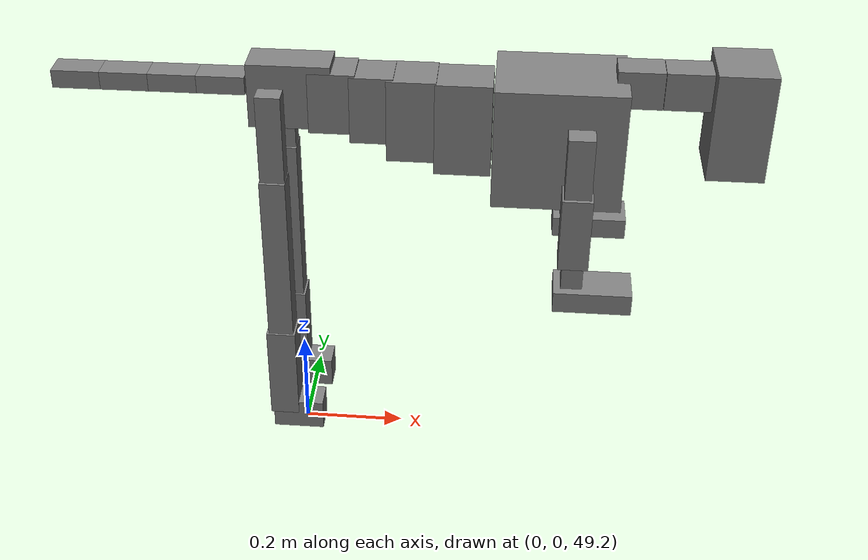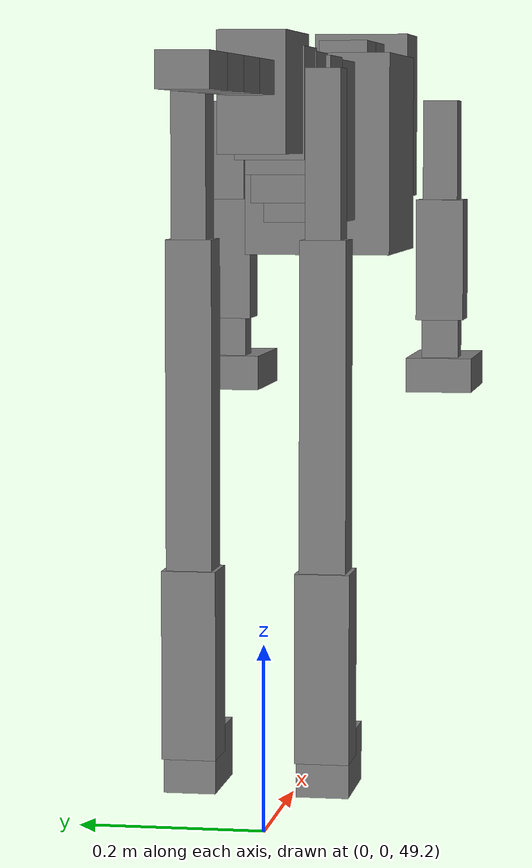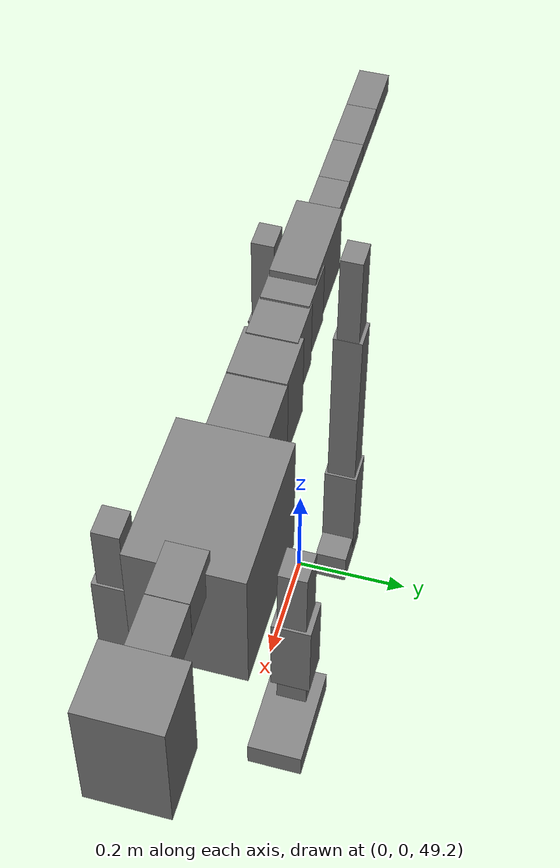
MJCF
<mujoco model="dog">

    <default>
        <joint armature="0.02" stiffness="1" damping="0.2" limited="true"/>
        <geom condim="3" friction="1 0.05 0.05" margin="0.01"/>
        <motor ctrllimited="true" ctrlrange="-1.0 1.0" forcelimited="true" gear="50"/>
    </default>

    <compiler inertiafromgeom="true" angle="radian"/>

    <option timestep="0.016" iterations="50" tolerance="1e-10" solver="Newton" jacobian="dense" cone="pyramidal"/>

    <size nconmax="20000" njmax="60000" nstack="5000000"/>
    <visual>
        <map force="0.1" zfar="30"/>
        <rgba haze="0.15 0.25 0.35 1"/>
        <quality shadowsize="2048"/>
        <global offwidth="800" offheight="800"/>
    </visual>

    <asset>
        <texture type="skybox" builtin="gradient" rgb1="0.3 0.5 0.7" rgb2="0 0 0" width="512" height="512"/>
        <texture name="texplane" type="2d" builtin="checker" rgb1=".2 .3 .4" rgb2=".1 0.15 0.2" width="512" height="512"
                 mark="cross" markrgb=".8 .8 .8"/>
        <texture name="texgeom" type="cube" builtin="flat" mark="cross" width="127" height="1278" rgb1="0.8 0.6 0.4"
                 rgb2="0.8 0.6 0.4" markrgb="1 1 1" random="0.01"/>

        <material name="matplane" reflectance="0.3" texture="texplane" texrepeat="1 1" texuniform="true"/>
        <material name="matgeom" texture="texgeom" texuniform="true" rgba="0.8 0.6 .4 1"/>
    </asset>

    <worldbody>
        <geom name="floor" pos="0 0 0" size="0 0 .25" type="plane" material="matplane" condim="3"/>

        <light directional="false" diffuse=".2 .2 .2" specular="0 0 0" pos="0 0 5" dir="0 0 -1" castshadow="false"/>
        <light mode="targetbodycom" target="torso" directional="false" diffuse=".8 .8 .8" specular="0.3 0.3 0.3"
               pos="0 0 4.0" dir="0 0 -1"/>

        <body name="root" pos="0 0 50">
            <freejoint name="root_1"/>
            <geom type="box" pos="0 0 -0.02" size="0.0774  0.0358  0.063" density="2030"/>

            <body name="spine1" pos="0.054 0 0">
                <joint name="spine1_y" axis="0 1 0" range="0 0.7" limited="true"/>
                <geom type="box" pos="0.02375 0 -0.03" size="0.04375  0.0375  0.05985" density="2030"/>

                <body name="spine2" pos="0.0612 0 0">
                    <joint name="spine2_y" axis="0 1 0" range="-0.15 0.15" limited="true"/>
                    <geom type="box" pos="0.03555  0  -0.04" size="0.04055  0.039  0.06615" density="2030"/>

                    <body name="spine3" pos="0.0730 0 0">
                        <joint name="spine3_y" axis="0 1 0" range="-0.15 0.15" limited="true"/>
                        <geom type="box" pos="0.03555  0  -0.057" size="0.04555  0.0445  0.081" density="2030"/>

                        <body name="spine4" pos="0.0780 0 0">
                            <joint name="spine4_y" axis="0 1 0" range="-0.15 0.15" limited="true"/>
                            <geom type="box" pos="0.05265  0  -0.07" size="0.05265  0.045  0.09135" density="2030"/>

                            <body name="torso" pos="0.1082 0 0">
                                <joint name="torso_y" axis="0 1 0" range="-0.15 0.15" limited="true"/>
                                <geom type="box" pos="0.11925  0  -0.085" size="0.11925  0.085  0.11745"
                                      density="2030"/>

                                <body name="neck1" pos="0.2160  0   0.0180">
                                    <joint name="neck1_y" axis="0 1 0" range="-1.2  -1" limited="true"/>
                                    <geom type="box" pos="0.0423  0  0" size="0.0423  0.03  0.036" density="2325"/>

                                    <body name="neck2" pos="0.0853  0  0">
                                        <joint name="neck2_y" axis="0 1 0" range="0.1  0" limited="true"/>
                                        <geom type="box" pos="0.0423  0  0" size="0.0423  0.03  0.036" density="2325"/>

                                        <body name="head" pos="0.0853  0  0">
                                            <joint name="head_y" axis="0 1 0" range="-0.3  -0.2" limited="true"/>
                                            <geom type="box" pos="0.0531  0  -0.055" size="0.0531  0.06  0.1044"
                                                  density="4030"/>

                                        </body>
                                    </body>
                                </body>

                                <body name="front_shoulder" pos="0.156  0   -0.0480">
                                    <joint name="front_shoulder_y" axis="0 1 0" range="-1 1.5" limited="true"/>
                                    <geom type="box" pos="0 0.13 -0.0462" size="0.0241  0.0206  0.0728" density="1158"/>
                                    <geom type="box" pos="0 -0.13 -0.0462" size="0.0241  0.0206  0.0728"
                                          density="1158"/>

                                    <body name="front_elbow" pos="0  0  -0.0923">
                                        <joint name="front_elbow_y" axis="0 1 0" range="-2 0" limited="true"/>
                                        <geom type="box" pos="0 0.13 -0.0724" size="0.0278  0.0284  0.0724"
                                              density="1081"/>
                                        <geom type="box" pos="0 -0.13 -0.0724" size="0.0278  0.0284  0.0724"
                                              density="1081"/>

                                        <body name="front_wrist" pos="0  0  -0.1449">
                                            <joint name="front_wrist_y" axis="0 1 0" range="-0.2 0" limited="true"/>
                                            <geom type="box" pos="0 0.13 -0.0304" size="0.0197  0.0219  0.0435"
                                                  density="1664"/>
                                            <geom type="box" pos="0 -0.13 -0.0304" size="0.0197  0.0219  0.0435"
                                                  density="1664"/>

                                            <body name="front_finger_end" pos="0  0  -0.0607">
                                                <joint name="front_finger_y" axis="0 1 0" range="-0.4 1"
                                                       limited="true"/>
                                                <geom type="box" pos="0.0394  0.13  -0.0056"
                                                      size="0.0723  0.0394  0.0206" density="1515"/>
                                                <geom type="box" pos="0.0394  -0.13  -0.0056"
                                                      size="0.0723  0.0394  0.0206" density="1515"/>

                                            </body>

                                        </body>
                                    </body>
                                </body>

                            </body>
                        </body>
                    </body>
                </body>
            </body>

            <body name="back_hip" pos="-0.03 0 -0.018">
                <joint name="back_hip_y" axis="0 1 0" range="-1.5 0.3" limited="true"/>
                <geom type="box" pos="0 0.07 -0.0843" size="0.0233  0.0183  0.1071" density="1154"/>
                <geom type="box" pos="0 -0.07 -0.0843" size="0.0233  0.0183  0.1071" density="1154"/>

                <body name="back_knee" pos="0  0  -0.1686">
                    <joint name="back_knee_y" axis="0 1 0" range="0 2.8" limited="true"/>
                    <geom type="box" pos="0 0.07 -0.1700" size="0.0245  0.0242  0.1855" density="1227"/>
                    <geom type="box" pos="0 -0.07 -0.1700" size="0.0245  0.0242  0.1855" density="1227"/>

                    <body name="back_ankle" pos="0  0  -0.3399">
                        <joint name="back_ankle_y" axis="0 1 0" range="-2.2 0" limited="true"/>
                        <geom type="box" pos="0 0.07 -0.0879" size="0.0285  0.0285  0.0991" density="1284"/>
                        <geom type="box" pos="0 -0.07 -0.0879" size="0.0285  0.0285  0.0991" density="1284"/>

                        <body name="back_toe_end" pos="0  0  -0.1758">
                            <joint name="back_toe_y" axis="0 1 0" range="-0.4 1" limited="true"/>
                            <geom type="box" pos="0.0275  0.07  -0.0162" size="0.0504  0.0275  0.0312" density="1515"/>
                            <geom type="box" pos="0.0275  -0.07  -0.0162" size="0.0504  0.0275  0.0312" density="1515"/>

                        </body>
                    </body>
                </body>
            </body>

            <body name="tail1" pos="-0.074 0 -0.006">
                <joint name="tail1_y" axis="0 1 0" range="-0.2 0.2" limited="true"/>
                <geom type="box" pos="-0.0536  0  0" size="0.045  0.025  0.0175" density="1587"/>

                <body name="tail2" pos="-0.09 0 0">
                    <joint name="tail2_y" axis="0 1 0" range="-0.2 0.2" limited="true"/>
                    <geom type="box" pos="-0.0536  0  0" size="0.045  0.025  0.0175" density="1587"/>

                    <body name="tail3" pos="-0.09 0 0">
                        <joint name="tail3_y" axis="0 1 0" range="-0.2 0.2" limited="true"/>
                        <geom type="box" pos="-0.0536  0  0" size="0.045  0.025  0.0175" density="1587"/>

                        <body name="tail4" pos="-0.09 0 0">
                            <joint name="tail4_y" axis="0 1 0" range="-0.2 0.2" limited="true"/>
                            <geom type="box" pos="-0.0536  0  0" size="0.045  0.025  0.0175" density="1587"/>

                        </body>
                    </body>
                </body>
            </body>
        </body>
    </worldbody>

    <actuator>
        <motor joint="spine1_y" forcerange="-150 150     "/>
        <motor joint="spine2_y" forcerange="-150 150     "/>
        <motor joint="spine3_y" forcerange="-150 150     "/>
        <motor joint="spine4_y" forcerange="-150 150     "/>
        <motor joint="torso_y" forcerange="-150 150     "/>
        <motor joint="neck1_y" forcerange="-100 100       "/>
        <motor joint="neck2_y" forcerange="-100 100       "/>
        <motor joint="head_y" forcerange="-150 150       "/>
        <motor joint="front_shoulder_y" forcerange="-102.20 135.29"/>
        <motor joint="front_elbow_y" forcerange="-176.06 130.61"/>
        <motor joint="front_wrist_y" forcerange="-118.64 56.89"/>
        <motor joint="front_finger_y" forcerange="-82.65 87.70"/>
        <motor joint="back_hip_y" forcerange="-241.48 202.25"/>
        <motor joint="back_knee_y" forcerange="-205.73 346.05"/>
        <motor joint="back_angle_y" forcerange="-220.54 134.77"/>
        <motor joint="back_toe_y" forcerange="-28.62 111.38"/>
        <motor joint="tail1_y" forcerange="-50 50     "/>
        <motor joint="tail2_y" forcerange="-50 50     "/>
        <motor joint="tail3_y" forcerange="-50 50     "/>
        <motor joint="tail4_y" forcerange="-50 50     "/>
    </actuator>
</mujoco>
